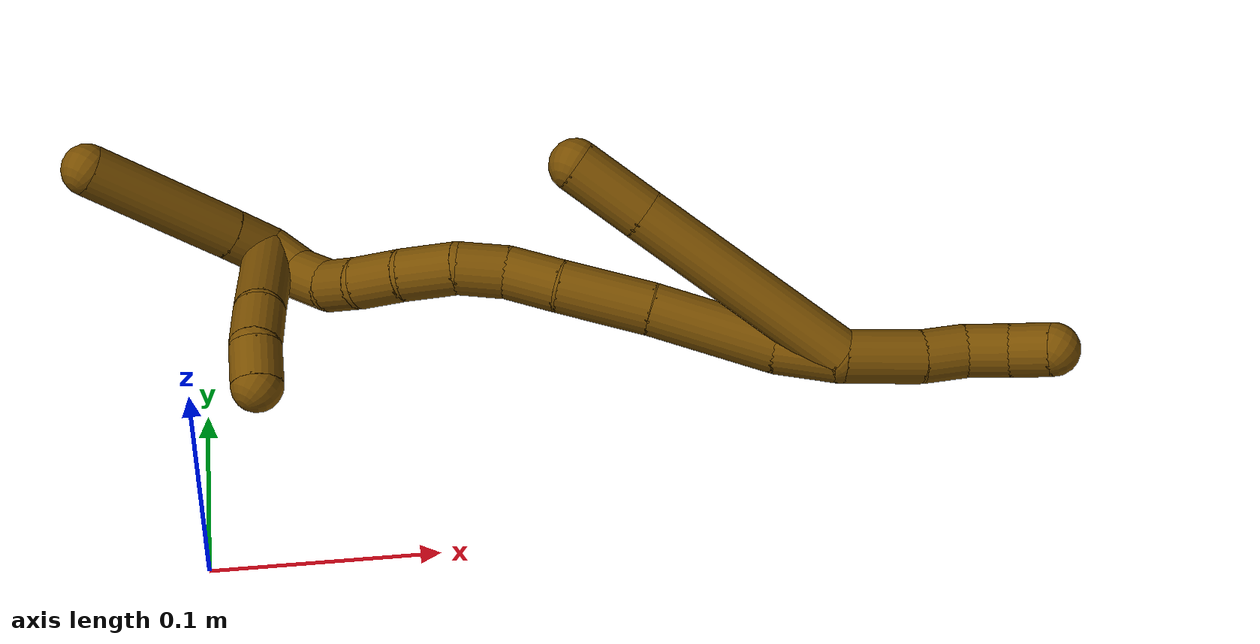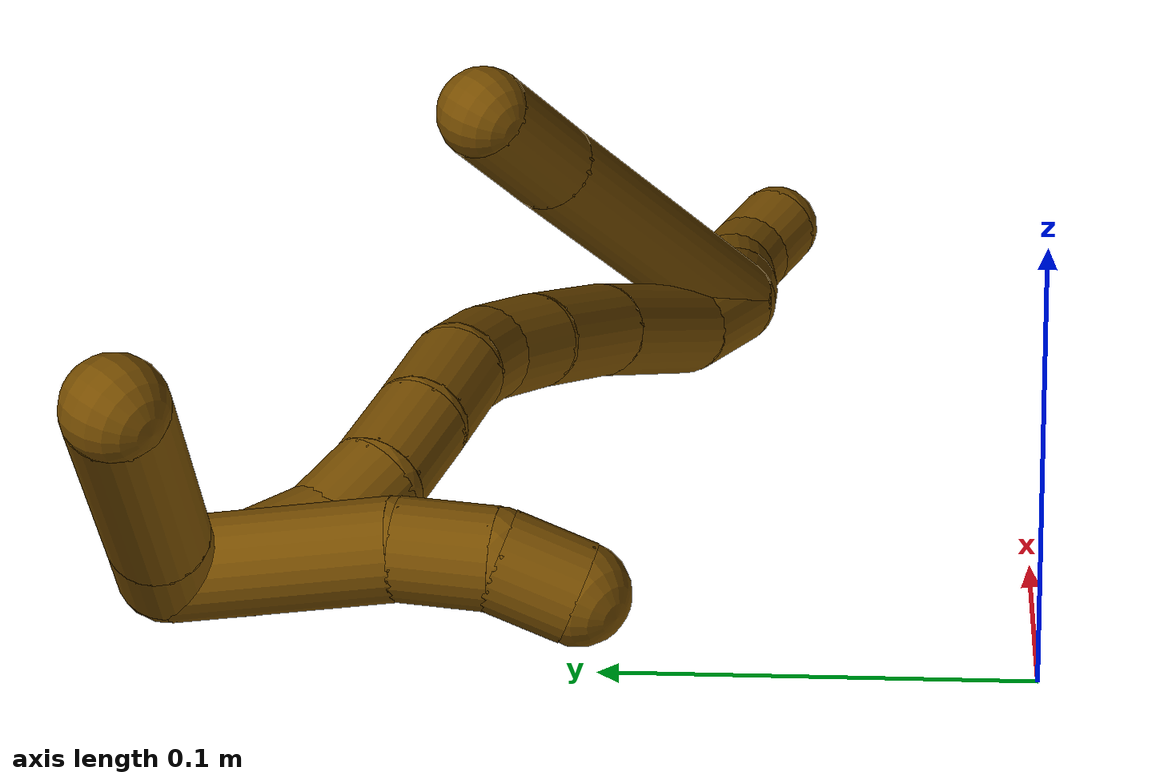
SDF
<sdf version="1.7">
 <world name="default">
  <model name="12">
   <static>0</static>
   <link name="12">
    <collision name="collision-cylinder-e_1_2_8">
     <pose>-0.05016 0.024942 0.00081 -1.53834 -1.10915 1.0803</pose>
     <geometry><cylinder><radius>0.0125</radius><length>0.11205</length></cylinder></geometry>
     <surface>
      <friction><ode><mu>1.16</mu><mu2>1.16</mu2><slip1>0</slip1><slip2>0</slip2></ode></friction>
      <contact><ode><kp>1e+06</kp><kd>1</kd><max_vel>0</max_vel><min_depth>0.001</min_depth></ode></contact>
     </surface>
    </collision>
    <visual name="visual-cylinder-e_1_2_8">
     <pose>-0.05016 0.024942 0.00081 -1.53834 -1.10915 1.0803</pose>
     <geometry><cylinder><radius>0.0125</radius><length>0.11205</length></cylinder></geometry>
     <material><ambient>0.466667 0.301961 0 1</ambient></material>
    </visual>
    <collision name="collision-cylinder-e_2_8_6">
     <pose>-0.117401 0.058144 0.001893 -1.53775 -1.12011 1.09058</pose>
     <geometry><cylinder><radius>0.0125</radius><length>0.03795</length></cylinder></geometry>
     <surface>
      <friction><ode><mu>1.16</mu><mu2>1.16</mu2><slip1>0</slip1><slip2>0</slip2></ode></friction>
      <contact><ode><kp>1e+06</kp><kd>1</kd><max_vel>0</max_vel><min_depth>0.001</min_depth></ode></contact>
     </surface>
    </collision>
    <visual name="visual-cylinder-e_2_8_6">
     <pose>-0.117401 0.058144 0.001893 -1.53775 -1.12011 1.09058</pose>
     <geometry><cylinder><radius>0.0125</radius><length>0.03795</length></cylinder></geometry>
     <material><ambient>0.466667 0.301961 0 1</ambient></material>
    </visual>
    <collision name="collision-cylinder-e_1_2_9">
     <pose>0.012926 -0.009225 0.010445 0.723441 0.747827 0.294769</pose>
     <geometry><cylinder><radius>0.0125</radius><length>0.038015</length></cylinder></geometry>
     <surface>
      <friction><ode><mu>1.16</mu><mu2>1.16</mu2><slip1>0</slip1><slip2>0</slip2></ode></friction>
      <contact><ode><kp>1e+06</kp><kd>1</kd><max_vel>0</max_vel><min_depth>0.001</min_depth></ode></contact>
     </surface>
    </collision>
    <visual name="visual-cylinder-e_1_2_9">
     <pose>0.012926 -0.009225 0.010445 0.723441 0.747827 0.294769</pose>
     <geometry><cylinder><radius>0.0125</radius><length>0.038015</length></cylinder></geometry>
     <material><ambient>0.466667 0.301961 0 1</ambient></material>
    </visual>
    <collision name="collision-cylinder-e_2_9_10">
     <pose>0.031888 -0.023852 0.027582 0.679137 0.612013 0.222285</pose>
     <geometry><cylinder><radius>0.0125</radius><length>0.021015</length></cylinder></geometry>
     <surface>
      <friction><ode><mu>1.16</mu><mu2>1.16</mu2><slip1>0</slip1><slip2>0</slip2></ode></friction>
      <contact><ode><kp>1e+06</kp><kd>1</kd><max_vel>0</max_vel><min_depth>0.001</min_depth></ode></contact>
     </surface>
    </collision>
    <visual name="visual-cylinder-e_2_9_10">
     <pose>0.031888 -0.023852 0.027582 0.679137 0.612013 0.222285</pose>
     <geometry><cylinder><radius>0.0125</radius><length>0.021015</length></cylinder></geometry>
     <material><ambient>0.466667 0.301961 0 1</ambient></material>
    </visual>
    <collision name="collision-cylinder-e_3_10_11">
     <pose>0.043581 -0.036707 0.038968 1.00873 0.570844 0.321152</pose>
     <geometry><cylinder><radius>0.0125</radius><length>0.020935</length></cylinder></geometry>
     <surface>
      <friction><ode><mu>1.16</mu><mu2>1.16</mu2><slip1>0</slip1><slip2>0</slip2></ode></friction>
      <contact><ode><kp>1e+06</kp><kd>1</kd><max_vel>0</max_vel><min_depth>0.001</min_depth></ode></contact>
     </surface>
    </collision>
    <visual name="visual-cylinder-e_3_10_11">
     <pose>0.043581 -0.036707 0.038968 1.00873 0.570844 0.321152</pose>
     <geometry><cylinder><radius>0.0125</radius><length>0.020935</length></cylinder></geometry>
     <material><ambient>0.466667 0.301961 0 1</ambient></material>
    </visual>
    <collision name="collision-cylinder-e_4_11_5">
     <pose>0.052708 -0.053056 0.046688 1.24296 0.353802 0.254665</pose>
     <geometry><cylinder><radius>0.0125</radius><length>0.020035</length></cylinder></geometry>
     <surface>
      <friction><ode><mu>1.16</mu><mu2>1.16</mu2><slip1>0</slip1><slip2>0</slip2></ode></friction>
      <contact><ode><kp>1e+06</kp><kd>1</kd><max_vel>0</max_vel><min_depth>0.001</min_depth></ode></contact>
     </surface>
    </collision>
    <visual name="visual-cylinder-e_4_11_5">
     <pose>0.052708 -0.053056 0.046688 1.24296 0.353802 0.254665</pose>
     <geometry><cylinder><radius>0.0125</radius><length>0.020035</length></cylinder></geometry>
     <material><ambient>0.466667 0.301961 0 1</ambient></material>
    </visual>
    <collision name="collision-cylinder-e_1_2_12">
     <pose>-0.008008 0.012301 -0.003728 -1.86506 -0.557163 0.735968</pose>
     <geometry><cylinder><radius>0.0125</radius><length>0.030287</length></cylinder></geometry>
     <surface>
      <friction><ode><mu>1.16</mu><mu2>1.16</mu2><slip1>0</slip1><slip2>0</slip2></ode></friction>
      <contact><ode><kp>1e+06</kp><kd>1</kd><max_vel>0</max_vel><min_depth>0.001</min_depth></ode></contact>
     </surface>
    </collision>
    <visual name="visual-cylinder-e_1_2_12">
     <pose>-0.008008 0.012301 -0.003728 -1.86506 -0.557163 0.735968</pose>
     <geometry><cylinder><radius>0.0125</radius><length>0.030287</length></cylinder></geometry>
     <material><ambient>0.466667 0.301961 0 1</ambient></material>
    </visual>
    <collision name="collision-cylinder-e_2_12_13">
     <pose>-0.038391 0.043742 -0.014263 -1.91251 -0.833631 1.12065</pose>
     <geometry><cylinder><radius>0.0125</radius><length>0.060444</length></cylinder></geometry>
     <surface>
      <friction><ode><mu>1.16</mu><mu2>1.16</mu2><slip1>0</slip1><slip2>0</slip2></ode></friction>
      <contact><ode><kp>1e+06</kp><kd>1</kd><max_vel>0</max_vel><min_depth>0.001</min_depth></ode></contact>
     </surface>
    </collision>
    <visual name="visual-cylinder-e_2_12_13">
     <pose>-0.038391 0.043742 -0.014263 -1.91251 -0.833631 1.12065</pose>
     <geometry><cylinder><radius>0.0125</radius><length>0.060444</length></cylinder></geometry>
     <material><ambient>0.466667 0.301961 0 1</ambient></material>
    </visual>
    <collision name="collision-cylinder-e_3_13_14">
     <pose>-0.076138 0.077586 -0.026611 -1.93113 -0.774416 1.06522</pose>
     <geometry><cylinder><radius>0.0125</radius><length>0.043962</length></cylinder></geometry>
     <surface>
      <friction><ode><mu>1.16</mu><mu2>1.16</mu2><slip1>0</slip1><slip2>0</slip2></ode></friction>
      <contact><ode><kp>1e+06</kp><kd>1</kd><max_vel>0</max_vel><min_depth>0.001</min_depth></ode></contact>
     </surface>
    </collision>
    <visual name="visual-cylinder-e_3_13_14">
     <pose>-0.076138 0.077586 -0.026611 -1.93113 -0.774416 1.06522</pose>
     <geometry><cylinder><radius>0.0125</radius><length>0.043962</length></cylinder></geometry>
     <material><ambient>0.466667 0.301961 0 1</ambient></material>
    </visual>
    <collision name="collision-cylinder-e_4_14_15">
     <pose>-0.099653 0.101965 -0.034463 -1.80539 -0.685979 0.849874</pose>
     <geometry><cylinder><radius>0.0125</radius><length>0.025713</length></cylinder></geometry>
     <surface>
      <friction><ode><mu>1.16</mu><mu2>1.16</mu2><slip1>0</slip1><slip2>0</slip2></ode></friction>
      <contact><ode><kp>1e+06</kp><kd>1</kd><max_vel>0</max_vel><min_depth>0.001</min_depth></ode></contact>
     </surface>
    </collision>
    <visual name="visual-cylinder-e_4_14_15">
     <pose>-0.099653 0.101965 -0.034463 -1.80539 -0.685979 0.849874</pose>
     <geometry><cylinder><radius>0.0125</radius><length>0.025713</length></cylinder></geometry>
     <material><ambient>0.466667 0.301961 0 1</ambient></material>
    </visual>
    <collision name="collision-cylinder-e_5_15_16">
     <pose>-0.115233 0.119564 -0.041521 -2.11041 -0.67791 1.11303</pose>
     <geometry><cylinder><radius>0.0125</radius><length>0.023715</length></cylinder></geometry>
     <surface>
      <friction><ode><mu>1.16</mu><mu2>1.16</mu2><slip1>0</slip1><slip2>0</slip2></ode></friction>
      <contact><ode><kp>1e+06</kp><kd>1</kd><max_vel>0</max_vel><min_depth>0.001</min_depth></ode></contact>
     </surface>
    </collision>
    <visual name="visual-cylinder-e_5_15_16">
     <pose>-0.115233 0.119564 -0.041521 -2.11041 -0.67791 1.11303</pose>
     <geometry><cylinder><radius>0.0125</radius><length>0.023715</length></cylinder></geometry>
     <material><ambient>0.466667 0.301961 0 1</ambient></material>
    </visual>
    <collision name="collision-cylinder-e_6_16_17">
     <pose>-0.127774 0.138432 -0.052322 -2.07615 -0.387491 0.642525</pose>
     <geometry><cylinder><radius>0.0125</radius><length>0.027019</length></cylinder></geometry>
     <surface>
      <friction><ode><mu>1.16</mu><mu2>1.16</mu2><slip1>0</slip1><slip2>0</slip2></ode></friction>
      <contact><ode><kp>1e+06</kp><kd>1</kd><max_vel>0</max_vel><min_depth>0.001</min_depth></ode></contact>
     </surface>
    </collision>
    <visual name="visual-cylinder-e_6_16_17">
     <pose>-0.127774 0.138432 -0.052322 -2.07615 -0.387491 0.642525</pose>
     <geometry><cylinder><radius>0.0125</radius><length>0.027019</length></cylinder></geometry>
     <material><ambient>0.466667 0.301961 0 1</ambient></material>
    </visual>
    <collision name="collision-cylinder-e_7_17_18">
     <pose>-0.135548 0.160327 -0.062628 -1.9411 -0.22336 0.32479</pose>
     <geometry><cylinder><radius>0.0125</radius><length>0.024093</length></cylinder></geometry>
     <surface>
      <friction><ode><mu>1.16</mu><mu2>1.16</mu2><slip1>0</slip1><slip2>0</slip2></ode></friction>
      <contact><ode><kp>1e+06</kp><kd>1</kd><max_vel>0</max_vel><min_depth>0.001</min_depth></ode></contact>
     </surface>
    </collision>
    <visual name="visual-cylinder-e_7_17_18">
     <pose>-0.135548 0.160327 -0.062628 -1.9411 -0.22336 0.32479</pose>
     <geometry><cylinder><radius>0.0125</radius><length>0.024093</length></cylinder></geometry>
     <material><ambient>0.466667 0.301961 0 1</ambient></material>
    </visual>
    <collision name="collision-cylinder-e_8_18_19">
     <pose>-0.139184 0.181386 -0.068205 -1.70118 -0.094665 0.107864</pose>
     <geometry><cylinder><radius>0.0125</radius><length>0.020481</length></cylinder></geometry>
     <surface>
      <friction><ode><mu>1.16</mu><mu2>1.16</mu2><slip1>0</slip1><slip2>0</slip2></ode></friction>
      <contact><ode><kp>1e+06</kp><kd>1</kd><max_vel>0</max_vel><min_depth>0.001</min_depth></ode></contact>
     </surface>
    </collision>
    <visual name="visual-cylinder-e_8_18_19">
     <pose>-0.139184 0.181386 -0.068205 -1.70118 -0.094665 0.107864</pose>
     <geometry><cylinder><radius>0.0125</radius><length>0.020481</length></cylinder></geometry>
     <material><ambient>0.466667 0.301961 0 1</ambient></material>
    </visual>
    <collision name="collision-cylinder-e_9_19_20">
     <pose>-0.143289 0.201889 -0.068144 -1.4382 -0.290654 0.25488</pose>
     <geometry><cylinder><radius>0.0125</radius><length>0.021893</length></cylinder></geometry>
     <surface>
      <friction><ode><mu>1.16</mu><mu2>1.16</mu2><slip1>0</slip1><slip2>0</slip2></ode></friction>
      <contact><ode><kp>1e+06</kp><kd>1</kd><max_vel>0</max_vel><min_depth>0.001</min_depth></ode></contact>
     </surface>
    </collision>
    <visual name="visual-cylinder-e_9_19_20">
     <pose>-0.143289 0.201889 -0.068144 -1.4382 -0.290654 0.25488</pose>
     <geometry><cylinder><radius>0.0125</radius><length>0.021893</length></cylinder></geometry>
     <material><ambient>0.466667 0.301961 0 1</ambient></material>
    </visual>
    <collision name="collision-cylinder-e_10_20_1">
     <pose>-0.152629 0.221284 -0.064329 -1.30723 -0.587163 0.455085</pose>
     <geometry><cylinder><radius>0.0125</radius><length>0.022394</length></cylinder></geometry>
     <surface>
      <friction><ode><mu>1.16</mu><mu2>1.16</mu2><slip1>0</slip1><slip2>0</slip2></ode></friction>
      <contact><ode><kp>1e+06</kp><kd>1</kd><max_vel>0</max_vel><min_depth>0.001</min_depth></ode></contact>
     </surface>
    </collision>
    <visual name="visual-cylinder-e_10_20_1">
     <pose>-0.152629 0.221284 -0.064329 -1.30723 -0.587163 0.455085</pose>
     <geometry><cylinder><radius>0.0125</radius><length>0.022394</length></cylinder></geometry>
     <material><ambient>0.466667 0.301961 0 1</ambient></material>
    </visual>
    <collision name="collision-cylinder-e_1_1_21">
     <pose>-0.169463 0.231755 -0.065239 -2.72671 -1.24022 2.56834</pose>
     <geometry><cylinder><radius>0.0125</radius><length>0.022479</length></cylinder></geometry>
     <surface>
      <friction><ode><mu>1.16</mu><mu2>1.16</mu2><slip1>0</slip1><slip2>0</slip2></ode></friction>
      <contact><ode><kp>1e+06</kp><kd>1</kd><max_vel>0</max_vel><min_depth>0.001</min_depth></ode></contact>
     </surface>
    </collision>
    <visual name="visual-cylinder-e_1_1_21">
     <pose>-0.169463 0.231755 -0.065239 -2.72671 -1.24022 2.56834</pose>
     <geometry><cylinder><radius>0.0125</radius><length>0.022479</length></cylinder></geometry>
     <material><ambient>0.466667 0.301961 0 1</ambient></material>
    </visual>
    <collision name="collision-cylinder-e_2_21_4">
     <pose>-0.2166 0.238684 -0.080406 -2.70923 -1.22803 2.53756</pose>
     <geometry><cylinder><radius>0.0125</radius><length>0.077521</length></cylinder></geometry>
     <surface>
      <friction><ode><mu>1.16</mu><mu2>1.16</mu2><slip1>0</slip1><slip2>0</slip2></ode></friction>
      <contact><ode><kp>1e+06</kp><kd>1</kd><max_vel>0</max_vel><min_depth>0.001</min_depth></ode></contact>
     </surface>
    </collision>
    <visual name="visual-cylinder-e_2_21_4">
     <pose>-0.2166 0.238684 -0.080406 -2.70923 -1.22803 2.53756</pose>
     <geometry><cylinder><radius>0.0125</radius><length>0.077521</length></cylinder></geometry>
     <material><ambient>0.466667 0.301961 0 1</ambient></material>
    </visual>
    <collision name="collision-cylinder-e_1_1_22">
     <pose>-0.160323 0.212034 -0.082749 2.42256 -0.053747 -0.142792</pose>
     <geometry><cylinder><radius>0.0125</radius><length>0.055496</length></cylinder></geometry>
     <surface>
      <friction><ode><mu>1.16</mu><mu2>1.16</mu2><slip1>0</slip1><slip2>0</slip2></ode></friction>
      <contact><ode><kp>1e+06</kp><kd>1</kd><max_vel>0</max_vel><min_depth>0.001</min_depth></ode></contact>
     </surface>
    </collision>
    <visual name="visual-cylinder-e_1_1_22">
     <pose>-0.160323 0.212034 -0.082749 2.42256 -0.053747 -0.142792</pose>
     <geometry><cylinder><radius>0.0125</radius><length>0.055496</length></cylinder></geometry>
     <material><ambient>0.466667 0.301961 0 1</ambient></material>
    </visual>
    <collision name="collision-cylinder-e_2_22_23">
     <pose>-0.160672 0.187183 -0.11347 2.55221 0.095786 0.313232</pose>
     <geometry><cylinder><radius>0.0125</radius><length>0.023861</length></cylinder></geometry>
     <surface>
      <friction><ode><mu>1.16</mu><mu2>1.16</mu2><slip1>0</slip1><slip2>0</slip2></ode></friction>
      <contact><ode><kp>1e+06</kp><kd>1</kd><max_vel>0</max_vel><min_depth>0.001</min_depth></ode></contact>
     </surface>
    </collision>
    <visual name="visual-cylinder-e_2_22_23">
     <pose>-0.160672 0.187183 -0.11347 2.55221 0.095786 0.313232</pose>
     <geometry><cylinder><radius>0.0125</radius><length>0.023861</length></cylinder></geometry>
     <material><ambient>0.466667 0.301961 0 1</ambient></material>
    </visual>
    <collision name="collision-cylinder-e_3_23_3">
     <pose>-0.155376 0.176397 -0.131813 2.68269 0.414395 1.46566</pose>
     <geometry><cylinder><radius>0.0125</radius><length>0.020643</length></cylinder></geometry>
     <surface>
      <friction><ode><mu>1.16</mu><mu2>1.16</mu2><slip1>0</slip1><slip2>0</slip2></ode></friction>
      <contact><ode><kp>1e+06</kp><kd>1</kd><max_vel>0</max_vel><min_depth>0.001</min_depth></ode></contact>
     </surface>
    </collision>
    <visual name="visual-cylinder-e_3_23_3">
     <pose>-0.155376 0.176397 -0.131813 2.68269 0.414395 1.46566</pose>
     <geometry><cylinder><radius>0.0125</radius><length>0.020643</length></cylinder></geometry>
     <material><ambient>0.466667 0.301961 0 1</ambient></material>
    </visual>
    <collision name="collision-sphere-3">
     <pose>-0.15122 0.172212 -0.140283 0 -0 0</pose>
     <geometry><sphere><radius>0.0125</radius></sphere></geometry>
     <surface>
      <friction><ode><mu>1.16</mu><mu2>1.16</mu2><slip1>0</slip1><slip2>0</slip2></ode></friction>
      <contact><ode><kp>1e+06</kp><kd>1</kd><max_vel>0</max_vel><min_depth>0.001</min_depth></ode></contact>
     </surface>
    </collision>
    <visual name="visual-sphere-3">
     <pose>-0.15122 0.172212 -0.140283 0 -0 0</pose>
     <geometry><sphere><radius>0.0125</radius></sphere></geometry>
     <material><ambient>0.466667 0.301961 0 1</ambient></material>
    </visual>
    <collision name="collision-sphere-23">
     <pose>-0.159531 0.180582 -0.123342 0 -0 0</pose>
     <geometry><sphere><radius>0.0125</radius></sphere></geometry>
     <surface>
      <friction><ode><mu>1.16</mu><mu2>1.16</mu2><slip1>0</slip1><slip2>0</slip2></ode></friction>
      <contact><ode><kp>1e+06</kp><kd>1</kd><max_vel>0</max_vel><min_depth>0.001</min_depth></ode></contact>
     </surface>
    </collision>
    <visual name="visual-sphere-23">
     <pose>-0.159531 0.180582 -0.123342 0 -0 0</pose>
     <geometry><sphere><radius>0.0125</radius></sphere></geometry>
     <material><ambient>0.466667 0.301961 0 1</ambient></material>
    </visual>
    <collision name="collision-sphere-22">
     <pose>-0.161813 0.193784 -0.103598 0 -0 0</pose>
     <geometry><sphere><radius>0.0125</radius></sphere></geometry>
     <surface>
      <friction><ode><mu>1.16</mu><mu2>1.16</mu2><slip1>0</slip1><slip2>0</slip2></ode></friction>
      <contact><ode><kp>1e+06</kp><kd>1</kd><max_vel>0</max_vel><min_depth>0.001</min_depth></ode></contact>
     </surface>
    </collision>
    <visual name="visual-sphere-22">
     <pose>-0.161813 0.193784 -0.103598 0 -0 0</pose>
     <geometry><sphere><radius>0.0125</radius></sphere></geometry>
     <material><ambient>0.466667 0.301961 0 1</ambient></material>
    </visual>
    <collision name="collision-sphere-4">
     <pose>-0.253105 0.244142 -0.092235 0 -0 0</pose>
     <geometry><sphere><radius>0.0125</radius></sphere></geometry>
     <surface>
      <friction><ode><mu>1.16</mu><mu2>1.16</mu2><slip1>0</slip1><slip2>0</slip2></ode></friction>
      <contact><ode><kp>1e+06</kp><kd>1</kd><max_vel>0</max_vel><min_depth>0.001</min_depth></ode></contact>
     </surface>
    </collision>
    <visual name="visual-sphere-4">
     <pose>-0.253105 0.244142 -0.092235 0 -0 0</pose>
     <geometry><sphere><radius>0.0125</radius></sphere></geometry>
     <material><ambient>0.466667 0.301961 0 1</ambient></material>
    </visual>
    <collision name="collision-sphere-21">
     <pose>-0.180094 0.233225 -0.068578 0 -0 0</pose>
     <geometry><sphere><radius>0.0125</radius></sphere></geometry>
     <surface>
      <friction><ode><mu>1.16</mu><mu2>1.16</mu2><slip1>0</slip1><slip2>0</slip2></ode></friction>
      <contact><ode><kp>1e+06</kp><kd>1</kd><max_vel>0</max_vel><min_depth>0.001</min_depth></ode></contact>
     </surface>
    </collision>
    <visual name="visual-sphere-21">
     <pose>-0.180094 0.233225 -0.068578 0 -0 0</pose>
     <geometry><sphere><radius>0.0125</radius></sphere></geometry>
     <material><ambient>0.466667 0.301961 0 1</ambient></material>
    </visual>
    <collision name="collision-sphere-1">
     <pose>-0.158832 0.230284 -0.0619 0 -0 0</pose>
     <geometry><sphere><radius>0.0125</radius></sphere></geometry>
     <surface>
      <friction><ode><mu>1.16</mu><mu2>1.16</mu2><slip1>0</slip1><slip2>0</slip2></ode></friction>
      <contact><ode><kp>1e+06</kp><kd>1</kd><max_vel>0</max_vel><min_depth>0.001</min_depth></ode></contact>
     </surface>
    </collision>
    <visual name="visual-sphere-1">
     <pose>-0.158832 0.230284 -0.0619 0 -0 0</pose>
     <geometry><sphere><radius>0.0125</radius></sphere></geometry>
     <material><ambient>0.466667 0.301961 0 1</ambient></material>
    </visual>
    <collision name="collision-sphere-11">
     <pose>0.049237 -0.044159 0.043662 0 -0 0</pose>
     <geometry><sphere><radius>0.0125</radius></sphere></geometry>
     <surface>
      <friction><ode><mu>1.16</mu><mu2>1.16</mu2><slip1>0</slip1><slip2>0</slip2></ode></friction>
      <contact><ode><kp>1e+06</kp><kd>1</kd><max_vel>0</max_vel><min_depth>0.001</min_depth></ode></contact>
     </surface>
    </collision>
    <visual name="visual-sphere-11">
     <pose>0.049237 -0.044159 0.043662 0 -0 0</pose>
     <geometry><sphere><radius>0.0125</radius></sphere></geometry>
     <material><ambient>0.466667 0.301961 0 1</ambient></material>
    </visual>
    <collision name="collision-sphere-10">
     <pose>0.037925 -0.029254 0.034274 0 -0 0</pose>
     <geometry><sphere><radius>0.0125</radius></sphere></geometry>
     <surface>
      <friction><ode><mu>1.16</mu><mu2>1.16</mu2><slip1>0</slip1><slip2>0</slip2></ode></friction>
      <contact><ode><kp>1e+06</kp><kd>1</kd><max_vel>0</max_vel><min_depth>0.001</min_depth></ode></contact>
     </surface>
    </collision>
    <visual name="visual-sphere-10">
     <pose>0.037925 -0.029254 0.034274 0 -0 0</pose>
     <geometry><sphere><radius>0.0125</radius></sphere></geometry>
     <material><ambient>0.466667 0.301961 0 1</ambient></material>
    </visual>
    <collision name="collision-sphere-6">
     <pose>-0.134481 0.066405 0.002166 0 -0 0</pose>
     <geometry><sphere><radius>0.0125</radius></sphere></geometry>
     <surface>
      <friction><ode><mu>1.16</mu><mu2>1.16</mu2><slip1>0</slip1><slip2>0</slip2></ode></friction>
      <contact><ode><kp>1e+06</kp><kd>1</kd><max_vel>0</max_vel><min_depth>0.001</min_depth></ode></contact>
     </surface>
    </collision>
    <visual name="visual-sphere-6">
     <pose>-0.134481 0.066405 0.002166 0 -0 0</pose>
     <geometry><sphere><radius>0.0125</radius></sphere></geometry>
     <material><ambient>0.466667 0.301961 0 1</ambient></material>
    </visual>
    <collision name="collision-sphere-9">
     <pose>0.025852 -0.01845 0.02089 0 -0 0</pose>
     <geometry><sphere><radius>0.0125</radius></sphere></geometry>
     <surface>
      <friction><ode><mu>1.16</mu><mu2>1.16</mu2><slip1>0</slip1><slip2>0</slip2></ode></friction>
      <contact><ode><kp>1e+06</kp><kd>1</kd><max_vel>0</max_vel><min_depth>0.001</min_depth></ode></contact>
     </surface>
    </collision>
    <visual name="visual-sphere-9">
     <pose>0.025852 -0.01845 0.02089 0 -0 0</pose>
     <geometry><sphere><radius>0.0125</radius></sphere></geometry>
     <material><ambient>0.466667 0.301961 0 1</ambient></material>
    </visual>
    <collision name="collision-sphere-2">
     <geometry><sphere><radius>0.0125</radius></sphere></geometry>
     <surface>
      <friction><ode><mu>1.16</mu><mu2>1.16</mu2><slip1>0</slip1><slip2>0</slip2></ode></friction>
      <contact><ode><kp>1e+06</kp><kd>1</kd><max_vel>0</max_vel><min_depth>0.001</min_depth></ode></contact>
     </surface>
    </collision>
    <visual name="visual-sphere-2">
     <geometry><sphere><radius>0.0125</radius></sphere></geometry>
     <material><ambient>0.466667 0.301961 0 1</ambient></material>
    </visual>
    <collision name="collision-sphere-19">
     <pose>-0.140152 0.191494 -0.06953 0 -0 0</pose>
     <geometry><sphere><radius>0.0125</radius></sphere></geometry>
     <surface>
      <friction><ode><mu>1.16</mu><mu2>1.16</mu2><slip1>0</slip1><slip2>0</slip2></ode></friction>
      <contact><ode><kp>1e+06</kp><kd>1</kd><max_vel>0</max_vel><min_depth>0.001</min_depth></ode></contact>
     </surface>
    </collision>
    <visual name="visual-sphere-19">
     <pose>-0.140152 0.191494 -0.06953 0 -0 0</pose>
     <geometry><sphere><radius>0.0125</radius></sphere></geometry>
     <material><ambient>0.466667 0.301961 0 1</ambient></material>
    </visual>
    <collision name="collision-sphere-8">
     <pose>-0.100321 0.049884 0.001619 0 -0 0</pose>
     <geometry><sphere><radius>0.0125</radius></sphere></geometry>
     <surface>
      <friction><ode><mu>1.16</mu><mu2>1.16</mu2><slip1>0</slip1><slip2>0</slip2></ode></friction>
      <contact><ode><kp>1e+06</kp><kd>1</kd><max_vel>0</max_vel><min_depth>0.001</min_depth></ode></contact>
     </surface>
    </collision>
    <visual name="visual-sphere-8">
     <pose>-0.100321 0.049884 0.001619 0 -0 0</pose>
     <geometry><sphere><radius>0.0125</radius></sphere></geometry>
     <material><ambient>0.466667 0.301961 0 1</ambient></material>
    </visual>
    <collision name="collision-sphere-5">
     <pose>0.056179 -0.061953 0.049714 0 -0 0</pose>
     <geometry><sphere><radius>0.0125</radius></sphere></geometry>
     <surface>
      <friction><ode><mu>1.16</mu><mu2>1.16</mu2><slip1>0</slip1><slip2>0</slip2></ode></friction>
      <contact><ode><kp>1e+06</kp><kd>1</kd><max_vel>0</max_vel><min_depth>0.001</min_depth></ode></contact>
     </surface>
    </collision>
    <visual name="visual-sphere-5">
     <pose>0.056179 -0.061953 0.049714 0 -0 0</pose>
     <geometry><sphere><radius>0.0125</radius></sphere></geometry>
     <material><ambient>0.466667 0.301961 0 1</ambient></material>
    </visual>
    <collision name="collision-sphere-12">
     <pose>-0.016015 0.024601 -0.007456 0 -0 0</pose>
     <geometry><sphere><radius>0.0125</radius></sphere></geometry>
     <surface>
      <friction><ode><mu>1.16</mu><mu2>1.16</mu2><slip1>0</slip1><slip2>0</slip2></ode></friction>
      <contact><ode><kp>1e+06</kp><kd>1</kd><max_vel>0</max_vel><min_depth>0.001</min_depth></ode></contact>
     </surface>
    </collision>
    <visual name="visual-sphere-12">
     <pose>-0.016015 0.024601 -0.007456 0 -0 0</pose>
     <geometry><sphere><radius>0.0125</radius></sphere></geometry>
     <material><ambient>0.466667 0.301961 0 1</ambient></material>
    </visual>
    <collision name="collision-sphere-13">
     <pose>-0.060767 0.062882 -0.021071 0 -0 0</pose>
     <geometry><sphere><radius>0.0125</radius></sphere></geometry>
     <surface>
      <friction><ode><mu>1.16</mu><mu2>1.16</mu2><slip1>0</slip1><slip2>0</slip2></ode></friction>
      <contact><ode><kp>1e+06</kp><kd>1</kd><max_vel>0</max_vel><min_depth>0.001</min_depth></ode></contact>
     </surface>
    </collision>
    <visual name="visual-sphere-13">
     <pose>-0.060767 0.062882 -0.021071 0 -0 0</pose>
     <geometry><sphere><radius>0.0125</radius></sphere></geometry>
     <material><ambient>0.466667 0.301961 0 1</ambient></material>
    </visual>
    <collision name="collision-sphere-14">
     <pose>-0.091509 0.092289 -0.032151 0 -0 0</pose>
     <geometry><sphere><radius>0.0125</radius></sphere></geometry>
     <surface>
      <friction><ode><mu>1.16</mu><mu2>1.16</mu2><slip1>0</slip1><slip2>0</slip2></ode></friction>
      <contact><ode><kp>1e+06</kp><kd>1</kd><max_vel>0</max_vel><min_depth>0.001</min_depth></ode></contact>
     </surface>
    </collision>
    <visual name="visual-sphere-14">
     <pose>-0.091509 0.092289 -0.032151 0 -0 0</pose>
     <geometry><sphere><radius>0.0125</radius></sphere></geometry>
     <material><ambient>0.466667 0.301961 0 1</ambient></material>
    </visual>
    <collision name="collision-sphere-15">
     <pose>-0.107796 0.111641 -0.036776 0 -0 0</pose>
     <geometry><sphere><radius>0.0125</radius></sphere></geometry>
     <surface>
      <friction><ode><mu>1.16</mu><mu2>1.16</mu2><slip1>0</slip1><slip2>0</slip2></ode></friction>
      <contact><ode><kp>1e+06</kp><kd>1</kd><max_vel>0</max_vel><min_depth>0.001</min_depth></ode></contact>
     </surface>
    </collision>
    <visual name="visual-sphere-15">
     <pose>-0.107796 0.111641 -0.036776 0 -0 0</pose>
     <geometry><sphere><radius>0.0125</radius></sphere></geometry>
     <material><ambient>0.466667 0.301961 0 1</ambient></material>
    </visual>
    <collision name="collision-sphere-16">
     <pose>-0.12267 0.127488 -0.046267 0 -0 0</pose>
     <geometry><sphere><radius>0.0125</radius></sphere></geometry>
     <surface>
      <friction><ode><mu>1.16</mu><mu2>1.16</mu2><slip1>0</slip1><slip2>0</slip2></ode></friction>
      <contact><ode><kp>1e+06</kp><kd>1</kd><max_vel>0</max_vel><min_depth>0.001</min_depth></ode></contact>
     </surface>
    </collision>
    <visual name="visual-sphere-16">
     <pose>-0.12267 0.127488 -0.046267 0 -0 0</pose>
     <geometry><sphere><radius>0.0125</radius></sphere></geometry>
     <material><ambient>0.466667 0.301961 0 1</ambient></material>
    </visual>
    <collision name="collision-sphere-17">
     <pose>-0.132879 0.149376 -0.058377 0 -0 0</pose>
     <geometry><sphere><radius>0.0125</radius></sphere></geometry>
     <surface>
      <friction><ode><mu>1.16</mu><mu2>1.16</mu2><slip1>0</slip1><slip2>0</slip2></ode></friction>
      <contact><ode><kp>1e+06</kp><kd>1</kd><max_vel>0</max_vel><min_depth>0.001</min_depth></ode></contact>
     </surface>
    </collision>
    <visual name="visual-sphere-17">
     <pose>-0.132879 0.149376 -0.058377 0 -0 0</pose>
     <geometry><sphere><radius>0.0125</radius></sphere></geometry>
     <material><ambient>0.466667 0.301961 0 1</ambient></material>
    </visual>
    <collision name="collision-sphere-18">
     <pose>-0.138216 0.171278 -0.066879 0 -0 0</pose>
     <geometry><sphere><radius>0.0125</radius></sphere></geometry>
     <surface>
      <friction><ode><mu>1.16</mu><mu2>1.16</mu2><slip1>0</slip1><slip2>0</slip2></ode></friction>
      <contact><ode><kp>1e+06</kp><kd>1</kd><max_vel>0</max_vel><min_depth>0.001</min_depth></ode></contact>
     </surface>
    </collision>
    <visual name="visual-sphere-18">
     <pose>-0.138216 0.171278 -0.066879 0 -0 0</pose>
     <geometry><sphere><radius>0.0125</radius></sphere></geometry>
     <material><ambient>0.466667 0.301961 0 1</ambient></material>
    </visual>
    <collision name="collision-sphere-20">
     <pose>-0.146426 0.212285 -0.066757 0 -0 0</pose>
     <geometry><sphere><radius>0.0125</radius></sphere></geometry>
     <surface>
      <friction><ode><mu>1.16</mu><mu2>1.16</mu2><slip1>0</slip1><slip2>0</slip2></ode></friction>
      <contact><ode><kp>1e+06</kp><kd>1</kd><max_vel>0</max_vel><min_depth>0.001</min_depth></ode></contact>
     </surface>
    </collision>
    <visual name="visual-sphere-20">
     <pose>-0.146426 0.212285 -0.066757 0 -0 0</pose>
     <geometry><sphere><radius>0.0125</radius></sphere></geometry>
     <material><ambient>0.466667 0.301961 0 1</ambient></material>
    </visual>
    <inertial>
     <pose>-0.094418 0.104644 -0.034797 0 -0 0</pose>
     <mass>0.75</mass>
     <inertia>
      <ixx>0.000124</ixx>
      <ixy>0</ixy>
      <ixz>0</ixz>
      <iyy>0.000256</iyy>
      <iyz>0</iyz>
      <izz>9.1e-05</izz>
     </inertia>
    </inertial>
   </link>
   <pose>0.290749 0.081761 0.025133 -1.01288 0.920428 -0.194288</pose>
  </model>
 </world>
</sdf>
